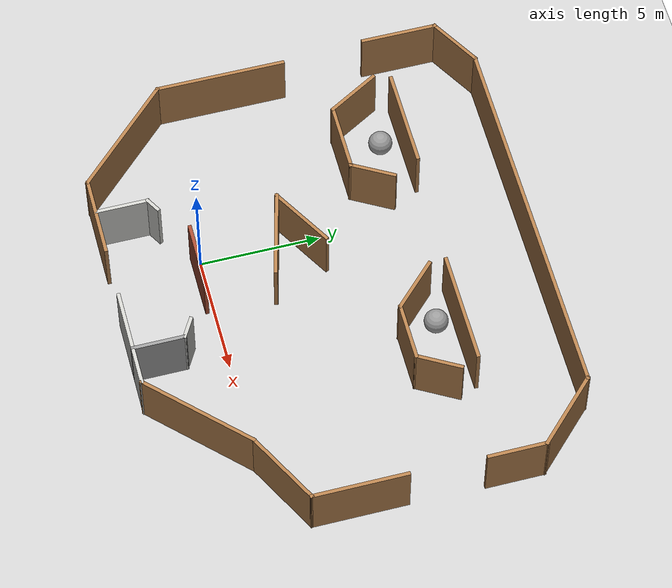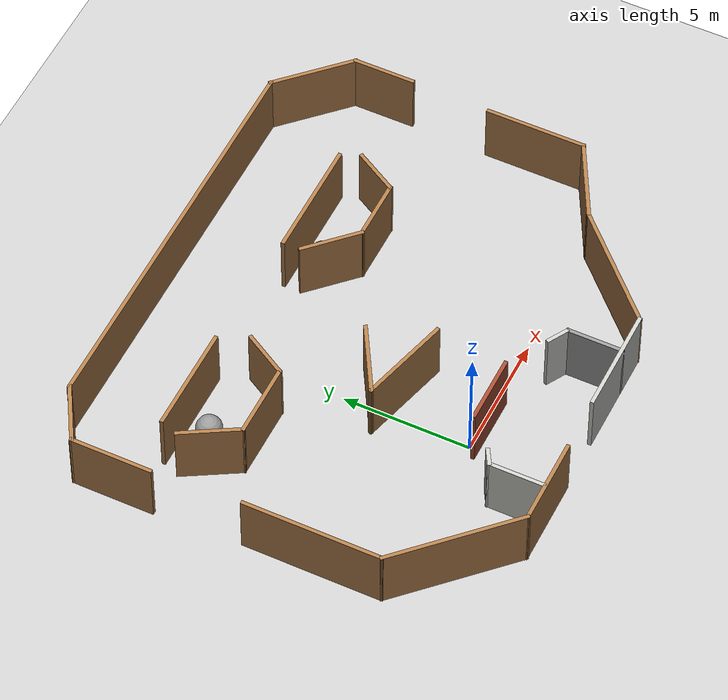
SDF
<sdf version="1.6">
 <world name="default">
  <light name="sun" type="directional">
   <pose>0 0 10 0 -0 0</pose>
   <diffuse>0.8 0.8 0.8 1</diffuse>
   <specular>0.2 0.2 0.2 1</specular>
   <attenuation>
    <range>1000</range>
    <constant>0.9</constant>
    <linear>0.01</linear>
    <quadratic>0.001</quadratic>
   </attenuation>
   <direction>-0.5 0.1 -0.9</direction>
  </light>
  <model name="ground_plane">
   <static>1</static>
   <link name="link">
    <collision name="collision">
     <geometry><plane><normal>0 0 1</normal><size>100 100</size></plane></geometry>
     <surface>
      <contact><collide_bitmask>65535</collide_bitmask></contact>
      <friction><ode><mu>100</mu><mu2>50</mu2></ode></friction>
     </surface>
    </collision>
    <visual name="visual">
     <cast_shadows>0</cast_shadows>
     <geometry><plane><normal>0 0 1</normal><size>100 100</size></plane></geometry>
     <material>
      <script><uri>file://media/materials/scripts/gazebo.material</uri><name>Gazebo/Grey</name></script>
     </material>
    </visual>
   </link>
  </model>
  <gravity>0 0 -9.8</gravity>
  <magnetic_field>6e-06 2.3e-05 -4.2e-05</magnetic_field>
  <atmosphere type="adiabatic"/>
  <physics name="default_physics" default="0" type="ode">
   <max_step_size>0.001</max_step_size>
   <real_time_factor>1</real_time_factor>
   <real_time_update_rate>1000</real_time_update_rate>
  </physics>
  <scene><ambient>0.4 0.4 0.4 1</ambient><background>0.7 0.7 0.7 1</background><shadows>1</shadows></scene>
  <audio><device>default</device></audio>
  <spherical_coordinates>
   <surface_model>EARTH_WGS84</surface_model>
   <latitude_deg>0</latitude_deg>
   <longitude_deg>0</longitude_deg>
   <elevation>0</elevation>
   <heading_deg>0</heading_deg>
  </spherical_coordinates>
  <model name="unit_sphere">
   <pose>5.31304 8.48715 0.5 0 -0 0</pose>
   <link name="link">
    <inertial>
     <mass>1</mass>
     <inertia><ixx>0.1</ixx><ixy>0</ixy><ixz>0</ixz><iyy>0.1</iyy><iyz>0</iyz><izz>0.1</izz></inertia>
    </inertial>
    <collision name="collision"><geometry><sphere><radius>0.5</radius></sphere></geometry></collision>
    <visual name="visual">
     <geometry><sphere><radius>0.5</radius></sphere></geometry>
     <material>
      <script><name>Gazebo/Grey</name><uri>file://media/materials/scripts/gazebo.material</uri></script>
     </material>
    </visual>
   </link>
  </model>
  <model name="unit_sphere_0">
   <pose>-3.59358 8.58716 0.5 0 -0 0</pose>
   <link name="link">
    <inertial>
     <mass>1</mass>
     <inertia><ixx>0.1</ixx><ixy>0</ixy><ixz>0</ixz><iyy>0.1</iyy><iyz>0</iyz><izz>0.1</izz></inertia>
    </inertial>
    <collision name="collision"><geometry><sphere><radius>0.5</radius></sphere></geometry></collision>
    <visual name="visual">
     <geometry><sphere><radius>0.5</radius></sphere></geometry>
     <material>
      <script><name>Gazebo/Grey</name><uri>file://media/materials/scripts/gazebo.material</uri></script>
     </material>
    </visual>
   </link>
  </model>
  <model name="room.world">
   <pose>2.67555 4.67514 0 0 -0 0</pose>
   <link name="Wall_0">
    <collision name="Wall_0_Collision">
     <geometry><box><size>3.5 0.15 2.5</size></box></geometry>
     <pose>0 0 1.25 0 -0 0</pose>
    </collision>
    <visual name="Wall_0_Visual">
     <pose>0 0 1.25 0 -0 0</pose>
     <geometry><box><size>3.5 0.15 2.5</size></box></geometry>
     <material>
      <script><uri>file://media/materials/scripts/gazebo.material</uri><name>Gazebo/Wood</name></script>
      <ambient>1 1 1 1</ambient>
     </material>
     <meta><layer>0</layer></meta>
    </visual>
    <pose>-4.47272 -8.46907 0 0 -0 0</pose>
   </link>
   <link name="Wall_10">
    <collision name="Wall_10_Collision">
     <geometry><box><size>2.25 0.15 2.5</size></box></geometry>
     <pose>0 0 1.25 0 -0 0</pose>
    </collision>
    <visual name="Wall_10_Visual">
     <pose>0 0 1.25 0 -0 0</pose>
     <geometry><box><size>2.25 0.15 2.5</size></box></geometry>
     <material>
      <script><uri>file://media/materials/scripts/gazebo.material</uri><name>Gazebo/Grey</name></script>
      <ambient>1 1 1 1</ambient>
     </material>
     <meta><layer>0</layer></meta>
    </visual>
    <pose>1.92057 -7.38968 0 0 -0 1.5708</pose>
   </link>
   <link name="Wall_12">
    <collision name="Wall_12_Collision">
     <geometry><box><size>2.25 0.15 2.5</size></box></geometry>
     <pose>0 0 1.25 0 -0 0</pose>
    </collision>
    <visual name="Wall_12_Visual">
     <pose>0 0 1.25 0 -0 0</pose>
     <geometry><box><size>2.25 0.15 2.5</size></box></geometry>
     <material>
      <script><uri>file://media/materials/scripts/gazebo.material</uri><name>Gazebo/CeilingTiled</name></script>
      <ambient>1 1 1 1</ambient>
     </material>
     <meta><layer>0</layer></meta>
    </visual>
    <pose>-4.67628 -7.36308 0 0 -0 1.5708</pose>
   </link>
   <link name="Wall_14">
    <collision name="Wall_14_Collision">
     <geometry><box><size>4.25 0.15 2.5</size></box></geometry>
     <pose>0 0 1.25 0 -0 0</pose>
    </collision>
    <visual name="Wall_14_Visual">
     <pose>0 0 1.25 0 -0 0</pose>
     <geometry><box><size>4.25 0.15 2.5</size></box></geometry>
     <material>
      <script><uri>file://media/materials/scripts/gazebo.material</uri><name>Gazebo/Wood</name></script>
      <ambient>1 1 1 1</ambient>
     </material>
     <meta><layer>0</layer></meta>
    </visual>
    <pose>-5.95198 4.81784 0 0 -0 0</pose>
   </link>
   <link name="Wall_16">
    <collision name="Wall_16_Collision">
     <geometry><box><size>4.75 0.15 2.5</size></box></geometry>
     <pose>0 0 1.25 0 -0 0</pose>
    </collision>
    <visual name="Wall_16_Visual">
     <pose>0 0 1.25 0 -0 0</pose>
     <geometry><box><size>4.75 0.15 2.5</size></box></geometry>
     <material>
      <script><uri>file://media/materials/scripts/gazebo.material</uri><name>Gazebo/Wood</name></script>
      <ambient>1 1 1 1</ambient>
     </material>
     <meta><layer>0</layer></meta>
    </visual>
    <pose>3.39344 4.60383 0 0 -0 0</pose>
   </link>
   <link name="Wall_19">
    <collision name="Wall_19_Collision">
     <geometry><box><size>2.5 0.15 2.5</size></box></geometry>
     <pose>0 0 1.25 0 -0 0</pose>
    </collision>
    <visual name="Wall_19_Visual">
     <pose>0 0 1.25 0 -0 0</pose>
     <geometry><box><size>2.5 0.15 2.5</size></box></geometry>
     <material>
      <script><uri>file://media/materials/scripts/gazebo.material</uri><name>Gazebo/Wood</name></script>
      <ambient>1 1 1 1</ambient>
     </material>
     <meta><layer>0</layer></meta>
    </visual>
    <pose>-7.682 3.10473 0 0 -0 -1.0472</pose>
   </link>
   <link name="Wall_2">
    <collision name="Wall_2_Collision">
     <geometry><box><size>4.25 0.15 2.5</size></box></geometry>
     <pose>0 0 1.25 0 -0 0</pose>
    </collision>
    <visual name="Wall_2_Visual">
     <pose>0 0 1.25 0 -0 0</pose>
     <geometry><box><size>4.25 0.15 2.5</size></box></geometry>
     <material>
      <script><uri>file://media/materials/scripts/gazebo.material</uri><name>Gazebo/CeilingTiled</name></script>
      <ambient>1 1 1 1</ambient>
     </material>
     <meta><layer>0</layer></meta>
    </visual>
    <pose>1.44355 -8.43968 0 0 -0 0</pose>
   </link>
   <link name="Wall_20">
    <collision name="Wall_20_Collision">
     <geometry><box><size>3 0.15 2.5</size></box></geometry>
     <pose>0 0 1.25 0 -0 0</pose>
    </collision>
    <visual name="Wall_20_Visual">
     <pose>0 0 1.25 0 -0 0</pose>
     <geometry><box><size>3 0.15 2.5</size></box></geometry>
     <material>
      <script><uri>file://media/materials/scripts/gazebo.material</uri><name>Gazebo/Wood</name></script>
      <ambient>1 1 1 1</ambient>
     </material>
     <meta><layer>0</layer></meta>
    </visual>
    <pose>-5.6695 2.08715 0 0 -0 0</pose>
   </link>
   <link name="Wall_21">
    <collision name="Wall_21_Collision">
     <geometry><box><size>2 0.15 2.5</size></box></geometry>
     <pose>0 0 1.25 0 -0 0</pose>
    </collision>
    <visual name="Wall_21_Visual">
     <pose>0 0 1.25 0 -0 0</pose>
     <geometry><box><size>2 0.15 2.5</size></box></geometry>
     <material>
      <script><uri>file://media/materials/scripts/gazebo.material</uri><name>Gazebo/Wood</name></script>
      <ambient>1 1 1 1</ambient>
     </material>
     <meta><layer>0</layer></meta>
    </visual>
    <pose>-3.782 2.88822 0 0 -0 1.0472</pose>
   </link>
   <link name="Wall_23">
    <collision name="Wall_23_Collision">
     <geometry><box><size>2.5 0.15 2.5</size></box></geometry>
     <pose>0 0 1.25 0 -0 0</pose>
    </collision>
    <visual name="Wall_23_Visual">
     <pose>0 0 1.25 0 -0 0</pose>
     <geometry><box><size>2.5 0.15 2.5</size></box></geometry>
     <material>
      <script><uri>file://media/materials/scripts/gazebo.material</uri><name>Gazebo/Wood</name></script>
      <ambient>1 1 1 1</ambient>
     </material>
     <meta><layer>0</layer></meta>
    </visual>
    <pose>1.92429 3.07744 0 0 -0 -0.785398</pose>
   </link>
   <link name="Wall_24">
    <collision name="Wall_24_Collision">
     <geometry><box><size>2.5 0.15 2.5</size></box></geometry>
     <pose>0 0 1.25 0 -0 0</pose>
    </collision>
    <visual name="Wall_24_Visual">
     <pose>0 0 1.25 0 -0 0</pose>
     <geometry><box><size>2.5 0.15 2.5</size></box></geometry>
     <material>
      <script><uri>file://media/materials/scripts/gazebo.material</uri><name>Gazebo/Wood</name></script>
      <ambient>1 1 1 1</ambient>
     </material>
     <meta><layer>0</layer></meta>
    </visual>
    <pose>3.93014 2.24659 0 0 -0 0</pose>
   </link>
   <link name="Wall_25">
    <collision name="Wall_25_Collision">
     <geometry><box><size>2 0.15 2.5</size></box></geometry>
     <pose>0 0 1.25 0 -0 0</pose>
    </collision>
    <visual name="Wall_25_Visual">
     <pose>0 0 1.25 0 -0 0</pose>
     <geometry><box><size>2 0.15 2.5</size></box></geometry>
     <material>
      <script><uri>file://media/materials/scripts/gazebo.material</uri><name>Gazebo/Wood</name></script>
      <ambient>1 1 1 1</ambient>
     </material>
     <meta><layer>0</layer></meta>
    </visual>
    <pose>5.56764 3.04767 0 0 -0 1.0472</pose>
   </link>
   <link name="Wall_27">
    <collision name="Wall_27_Collision">
     <geometry><box><size>3 0.15 2.5</size></box></geometry>
     <pose>0 0 1.25 0 -0 0</pose>
    </collision>
    <visual name="Wall_27_Visual">
     <pose>0 0 1.25 0 -0 0</pose>
     <geometry><box><size>3 0.15 2.5</size></box></geometry>
     <material>
      <script><uri>file://media/materials/scripts/gazebo.material</uri><name>Gazebo/Wood</name></script>
      <ambient>1 1 1 1</ambient>
     </material>
     <meta><layer>0</layer></meta>
    </visual>
    <pose>-2.3446 -0.488547 0 0 -0 -2.61799</pose>
   </link>
   <link name="Wall_28">
    <collision name="Wall_28_Collision">
     <geometry><box><size>3.75 0.15 2.5</size></box></geometry>
     <pose>0 0 1.25 0 -0 0</pose>
    </collision>
    <visual name="Wall_28_Visual">
     <pose>0 0 1.25 0 -0 0</pose>
     <geometry><box><size>3.75 0.15 2.5</size></box></geometry>
     <material>
      <script><uri>file://media/materials/scripts/gazebo.material</uri><name>Gazebo/Wood</name></script>
      <ambient>1 1 1 1</ambient>
     </material>
     <meta><layer>0</layer></meta>
    </visual>
    <pose>-1.84002 -1.66692 0 0 -0 -0.261799</pose>
   </link>
   <link name="Wall_30">
    <collision name="Wall_30_Collision">
     <geometry><box><size>0.75 0.15 2.5</size></box></geometry>
     <pose>0 0 1.25 0 -0 0</pose>
    </collision>
    <visual name="Wall_30_Visual">
     <pose>0 0 1.25 0 -0 0</pose>
     <geometry><box><size>0.75 0.15 2.5</size></box></geometry>
     <material>
      <script><uri>file://media/materials/scripts/gazebo.material</uri><name>Gazebo/CeilingTiled</name></script>
      <ambient>1 1 1 1</ambient>
     </material>
     <meta><layer>0</layer></meta>
    </visual>
    <pose>-4.41647 -6.16308 0 0 -0 0.523599</pose>
   </link>
   <link name="Wall_32">
    <collision name="Wall_32_Collision">
     <geometry><box><size>1 0.15 2.5</size></box></geometry>
     <pose>0 0 1.25 0 -0 0</pose>
    </collision>
    <visual name="Wall_32_Visual">
     <pose>0 0 1.25 0 -0 0</pose>
     <geometry><box><size>1 0.15 2.5</size></box></geometry>
     <material>
      <script><uri>file://media/materials/scripts/gazebo.material</uri><name>Gazebo/CeilingTiled</name></script>
      <ambient>1 1 1 1</ambient>
     </material>
     <meta><layer>0</layer></meta>
    </visual>
    <pose>1.55251 -6.12718 0 0 -0 2.61799</pose>
   </link>
   <link name="Wall_34">
    <collision name="Wall_34_Collision">
     <geometry><box><size>5.5 0.15 2.5</size></box></geometry>
     <pose>0 0 1.25 0 -0 0</pose>
    </collision>
    <visual name="Wall_34_Visual">
     <pose>0 0 1.25 0 -0 0</pose>
     <geometry><box><size>5.5 0.15 2.5</size></box></geometry>
     <material>
      <script><uri>file://media/materials/scripts/gazebo.material</uri><name>Gazebo/Wood</name></script>
      <ambient>1 1 1 1</ambient>
     </material>
     <meta><layer>0</layer></meta>
    </visual>
    <pose>-9.93074 -2.01105 0 0 -0 1.5708</pose>
   </link>
   <link name="Wall_36">
    <collision name="Wall_36_Collision">
     <geometry><box><size>3.25 0.15 2.5</size></box></geometry>
     <pose>0 0 1.25 0 -0 0</pose>
    </collision>
    <visual name="Wall_36_Visual">
     <pose>0 0 1.25 0 -0 0</pose>
     <geometry><box><size>3.25 0.15 2.5</size></box></geometry>
     <material>
      <script><uri>file://media/materials/scripts/gazebo.material</uri><name>Gazebo/Wood</name></script>
      <ambient>1 1 1 1</ambient>
     </material>
     <meta><layer>0</layer></meta>
    </visual>
    <pose>-10.1288 5.74407 0 0 -0 1.5708</pose>
   </link>
   <link name="Wall_37">
    <collision name="Wall_37_Collision">
     <geometry><box><size>2.5 0.15 2.5</size></box></geometry>
     <pose>0 0 1.25 0 -0 0</pose>
    </collision>
    <visual name="Wall_37_Visual">
     <pose>0 0 1.25 0 -0 0</pose>
     <geometry><box><size>2.5 0.15 2.5</size></box></geometry>
     <material>
      <script><uri>file://media/materials/scripts/gazebo.material</uri><name>Gazebo/Wood</name></script>
      <ambient>1 1 1 1</ambient>
     </material>
     <meta><layer>0</layer></meta>
    </visual>
    <pose>-9.11121 7.88157 0 0 -0 0.523599</pose>
   </link>
   <link name="Wall_38">
    <collision name="Wall_38_Collision">
     <geometry><box><size>16 0.15 2.5</size></box></geometry>
     <pose>0 0 1.25 0 -0 0</pose>
    </collision>
    <visual name="Wall_38_Visual">
     <pose>0 0 1.25 0 -0 0</pose>
     <geometry><box><size>16 0.15 2.5</size></box></geometry>
     <material>
      <script><uri>file://media/materials/scripts/gazebo.material</uri><name>Gazebo/Wood</name></script>
      <ambient>1 1 1 1</ambient>
     </material>
     <meta><layer>0</layer></meta>
    </visual>
    <pose>-0.168631 8.46907 0 0 -0 0</pose>
   </link>
   <link name="Wall_39">
    <collision name="Wall_39_Collision">
     <geometry><box><size>3.5 0.15 2.5</size></box></geometry>
     <pose>0 0 1.25 0 -0 0</pose>
    </collision>
    <visual name="Wall_39_Visual">
     <pose>0 0 1.25 0 -0 0</pose>
     <geometry><box><size>3.5 0.15 2.5</size></box></geometry>
     <material>
      <script><uri>file://media/materials/scripts/gazebo.material</uri><name>Gazebo/Wood</name></script>
      <ambient>1 1 1 1</ambient>
     </material>
     <meta><layer>0</layer></meta>
    </visual>
    <pose>8.94077 7.28467 0 0 -0 -0.785398</pose>
   </link>
   <link name="Wall_4">
    <collision name="Wall_4_Collision">
     <geometry><box><size>5.25 0.15 2.5</size></box></geometry>
     <pose>0 0 1.25 0 -0 0</pose>
    </collision>
    <visual name="Wall_4_Visual">
     <pose>0 0 1.25 0 -0 0</pose>
     <geometry><box><size>5.25 0.15 2.5</size></box></geometry>
     <material>
      <script><uri>file://media/materials/scripts/gazebo.material</uri><name>Gazebo/Wood</name></script>
      <ambient>1 1 1 1</ambient>
     </material>
     <meta><layer>0</layer></meta>
    </visual>
    <pose>5.29668 -6.63655 0 0 -0 0.785398</pose>
   </link>
   <link name="Wall_40">
    <collision name="Wall_40_Collision">
     <geometry><box><size>2.5 0.15 2.5</size></box></geometry>
     <pose>0 0 1.25 0 -0 0</pose>
    </collision>
    <visual name="Wall_40_Visual">
     <pose>0 0 1.25 0 -0 0</pose>
     <geometry><box><size>2.5 0.15 2.5</size></box></geometry>
     <material>
      <script><uri>file://media/materials/scripts/gazebo.material</uri><name>Gazebo/Wood</name></script>
      <ambient>1 1 1 1</ambient>
     </material>
     <meta><layer>0</layer></meta>
    </visual>
    <pose>10.1252 4.92526 0 0 -0 -1.5708</pose>
   </link>
   <link name="Wall_42">
    <collision name="Wall_42_Collision">
     <geometry><box><size>4 0.15 2.5</size></box></geometry>
     <pose>0 0 1.25 0 -0 0</pose>
    </collision>
    <visual name="Wall_42_Visual">
     <pose>0 0 1.25 0 -0 0</pose>
     <geometry><box><size>4 0.15 2.5</size></box></geometry>
     <material>
      <script><uri>file://media/materials/scripts/gazebo.material</uri><name>Gazebo/Wood</name></script>
      <ambient>1 1 1 1</ambient>
     </material>
     <meta><layer>0</layer></meta>
    </visual>
    <pose>10.0524 -1.36107 0 0 -0 -1.5708</pose>
   </link>
   <link name="Wall_43">
    <collision name="Wall_43_Collision">
     <geometry><box><size>3.48345 0.15 2.5</size></box></geometry>
     <pose>0 0 1.25 0 -0 0</pose>
    </collision>
    <visual name="Wall_43_Visual">
     <pose>0 0 1.25 0 -0 0</pose>
     <geometry><box><size>3.48345 0.15 2.5</size></box></geometry>
     <material>
      <script><uri>file://media/materials/scripts/gazebo.material</uri><name>Gazebo/Wood</name></script>
      <ambient>1 1 1 1</ambient>
     </material>
     <meta><layer>0</layer></meta>
    </visual>
    <pose>8.57608 -4.05975 0 0 -0 -2.65887</pose>
   </link>
   <link name="Wall_6">
    <collision name="Wall_6_Collision">
     <geometry><box><size>5.5 0.15 2.5</size></box></geometry>
     <pose>0 0 1.25 0 -0 0</pose>
    </collision>
    <visual name="Wall_6_Visual">
     <pose>0 0 1.25 0 -0 0</pose>
     <geometry><box><size>5.5 0.15 2.5</size></box></geometry>
     <material>
      <script><uri>file://media/materials/scripts/gazebo.material</uri><name>Gazebo/Wood</name></script>
      <ambient>1 1 1 1</ambient>
     </material>
     <meta><layer>0</layer></meta>
    </visual>
    <pose>-8.03923 -6.57756 0 0 -0 2.35619</pose>
   </link>
   <link name="Wall_8">
    <collision name="Wall_8_Collision">
     <geometry><box><size>2.75 0.15 2.5</size></box></geometry>
     <pose>0 0 1.25 0 -0 0</pose>
    </collision>
    <visual name="Wall_8_Visual">
     <pose>0 0 1.25 0 -0 0</pose>
     <geometry><box><size>2.75 0.15 2.5</size></box></geometry>
     <material>
      <script><uri>file://media/materials/scripts/gazebo.material</uri><name>Gazebo/Bricks</name></script>
      <ambient>1 1 1 1</ambient>
     </material>
     <meta><layer>0</layer></meta>
    </visual>
    <pose>-1.70046 -4.95505 0 0 -0 0</pose>
   </link>
   <static>1</static>
  </model>
 </world>
</sdf>
